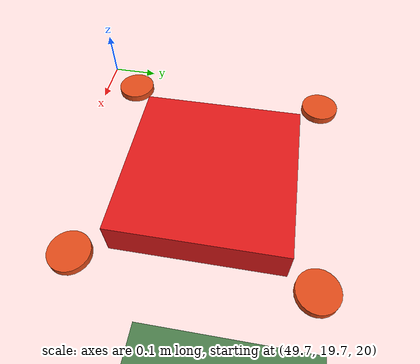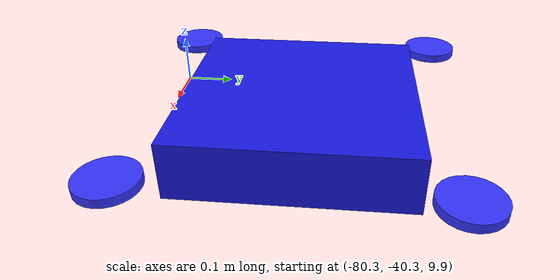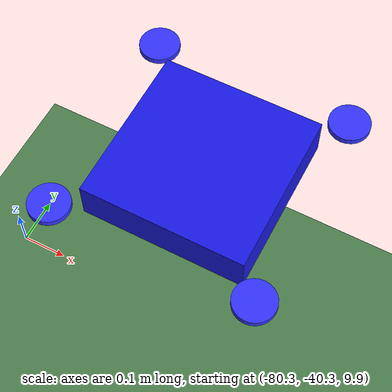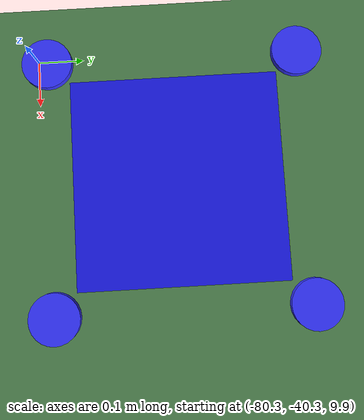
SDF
<?xml version="1.0" ?>
<sdf version="1.8">
  <world name="spear_intercept">

    <physics name="fast" type="ode">
      <max_step_size>0.004</max_step_size>
      <real_time_factor>1.0</real_time_factor>
      <real_time_update_rate>250</real_time_update_rate>
    </physics>

    <plugin filename="ignition-gazebo-physics-system" name="ignition::gazebo::systems::Physics"/>
    <plugin filename="ignition-gazebo-scene-broadcaster-system" name="ignition::gazebo::systems::SceneBroadcaster"/>
    <plugin filename="ignition-gazebo-user-commands-system" name="ignition::gazebo::systems::UserCommands"/>
    <plugin filename="ignition-gazebo-sensors-system" name="ignition::gazebo::systems::Sensors">
      <render_engine>ogre</render_engine>
    </plugin>

    <gravity>0 0 -9.8</gravity>

    <scene>
      <ambient>0.4 0.4 0.5 1</ambient>
      <background>0.5 0.7 0.9 1</background>
    </scene>

    <light type="directional" name="sun">
      <cast_shadows>true</cast_shadows>
      <pose>0 0 10 0 0 0</pose>
      <diffuse>0.8 0.8 0.8 1</diffuse>
      <specular>0.2 0.2 0.2 1</specular>
      <direction>-0.5 0.1 -0.9</direction>
    </light>

    <model name="ground_plane">
      <static>true</static>
      <link name="link">
        <collision name="collision">
          <geometry><plane><normal>0 0 1</normal><size>500 500</size></plane></geometry>
        </collision>
        <visual name="visual">
          <geometry><plane><normal>0 0 1</normal><size>500 500</size></plane></geometry>
          <material><ambient>0.3 0.5 0.3 1</ambient><diffuse>0.3 0.5 0.3 1</diffuse></material>
        </visual>
      </link>
    </model>

    <!-- INTERCEPTOR — Blue -->
    <model name="interceptor">
      <pose>-80 -40 10 0 0 0</pose>
      <link name="base_link">
        <gravity>false</gravity>
        <inertial>
          <mass>1.5</mass>
          <inertia><ixx>0.02</ixx><iyy>0.02</iyy><izz>0.04</izz></inertia>
        </inertial>
        <visual name="body">
          <geometry><box><size>0.4 0.4 0.1</size></box></geometry>
          <material><ambient>0.1 0.1 0.8 1</ambient><diffuse>0.1 0.1 0.9 1</diffuse></material>
        </visual>
        <collision name="col"><geometry><box><size>0.4 0.4 0.1</size></box></geometry></collision>
        <visual name="m1"><pose>0.25 0.25 0.02 0 0 0</pose><geometry><cylinder><radius>0.05</radius><length>0.015</length></cylinder></geometry><material><ambient>0.2 0.2 1 1</ambient></material></visual>
        <visual name="m2"><pose>0.25 -0.25 0.02 0 0 0</pose><geometry><cylinder><radius>0.05</radius><length>0.015</length></cylinder></geometry><material><ambient>0.2 0.2 1 1</ambient></material></visual>
        <visual name="m3"><pose>-0.25 0.25 0.02 0 0 0</pose><geometry><cylinder><radius>0.05</radius><length>0.015</length></cylinder></geometry><material><ambient>0.2 0.2 1 1</ambient></material></visual>
        <visual name="m4"><pose>-0.25 -0.25 0.02 0 0 0</pose><geometry><cylinder><radius>0.05</radius><length>0.015</length></cylinder></geometry><material><ambient>0.2 0.2 1 1</ambient></material></visual>
        <sensor name="interceptor_camera" type="camera">
          <pose>0.25 0 -0.02 0 0 0</pose>
          <always_on>true</always_on>
          <update_rate>30</update_rate>
          <visualize>false</visualize>
          <topic>interceptor/camera</topic>
          <camera>
            <horizontal_fov>1.39626</horizontal_fov>
            <image><width>640</width><height>480</height><format>R8G8B8</format></image>
            <clip><near>0.1</near><far>500</far></clip>
          </camera>
        </sensor>
      </link>
      <plugin filename="ignition-gazebo-velocity-control-system" name="ignition::gazebo::systems::VelocityControl"/>
    </model>

    <!-- TARGET — Red -->
    <model name="target">
      <pose>50 20 20 0 0 0</pose>
      <link name="base_link">
        <gravity>false</gravity>
        <inertial>
          <mass>1.0</mass>
          <inertia><ixx>0.015</ixx><iyy>0.015</iyy><izz>0.03</izz></inertia>
        </inertial>
        <visual name="body">
          <geometry><box><size>0.35 0.35 0.08</size></box></geometry>
          <material><ambient>0.9 0.1 0.1 1</ambient><diffuse>0.9 0.1 0.1 1</diffuse></material>
        </visual>
        <collision name="col"><geometry><box><size>0.35 0.35 0.08</size></box></geometry></collision>
        <visual name="m1"><pose>0.22 0.22 0.02 0 0 0</pose><geometry><cylinder><radius>0.04</radius><length>0.015</length></cylinder></geometry><material><ambient>0.9 0.3 0.1 1</ambient></material></visual>
        <visual name="m2"><pose>0.22 -0.22 0.02 0 0 0</pose><geometry><cylinder><radius>0.04</radius><length>0.015</length></cylinder></geometry><material><ambient>0.9 0.3 0.1 1</ambient></material></visual>
        <visual name="m3"><pose>-0.22 0.22 0.02 0 0 0</pose><geometry><cylinder><radius>0.04</radius><length>0.015</length></cylinder></geometry><material><ambient>0.9 0.3 0.1 1</ambient></material></visual>
        <visual name="m4"><pose>-0.22 -0.22 0.02 0 0 0</pose><geometry><cylinder><radius>0.04</radius><length>0.015</length></cylinder></geometry><material><ambient>0.9 0.3 0.1 1</ambient></material></visual>
      </link>
      <plugin filename="ignition-gazebo-velocity-control-system" name="ignition::gazebo::systems::VelocityControl"/>
    </model>

  </world>
</sdf>
